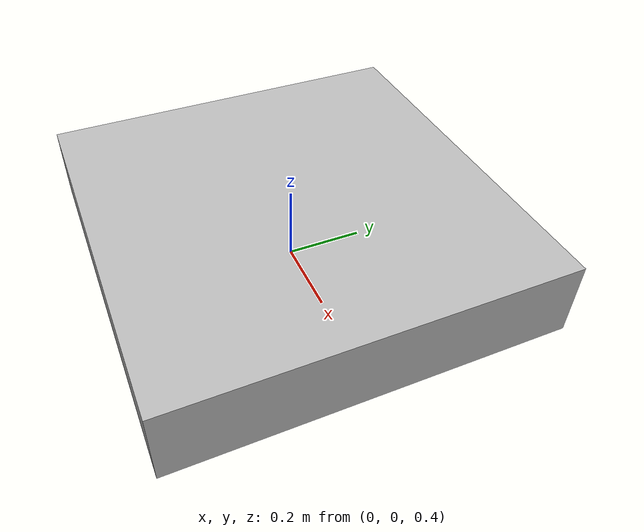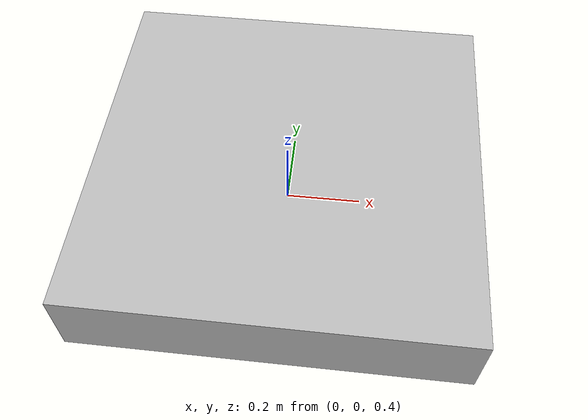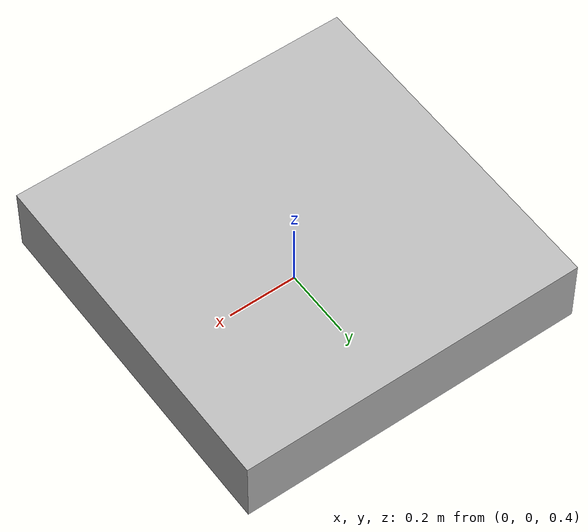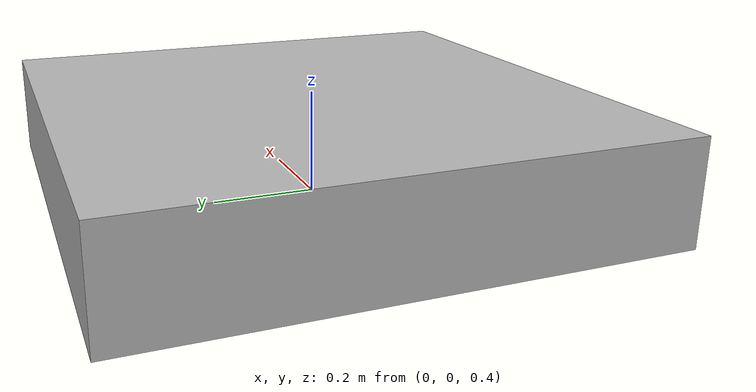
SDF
<sdf version="1.6">
  <model name="shaking_table">
    <static>false</static>
    <link name="table">
      <pose>0 0 0.5 0 0 0</pose>

      <!-- Collision Definition -->
      <collision name="collision">
        <geometry>
          <box>
            <size>1.0 1.0 0.2</size> <!-- Adjusted size -->
          </box>
        </geometry>
      </collision>

      <!-- Visual Definition -->
      <visual name="visual">
        <geometry>
          <box>
            <size>1.0 1.0 0.2</size> <!-- Adjusted size -->
          </box>
        </geometry>
      </visual>
    </link>

    <!-- Shaking Table Plugin -->
    <plugin name="shaking_plugin" filename="libshaking_plugin.so">
      <amplitude>0.5</amplitude>
      <frequency>1.0</frequency>
    </plugin>
  </model>
</sdf>
